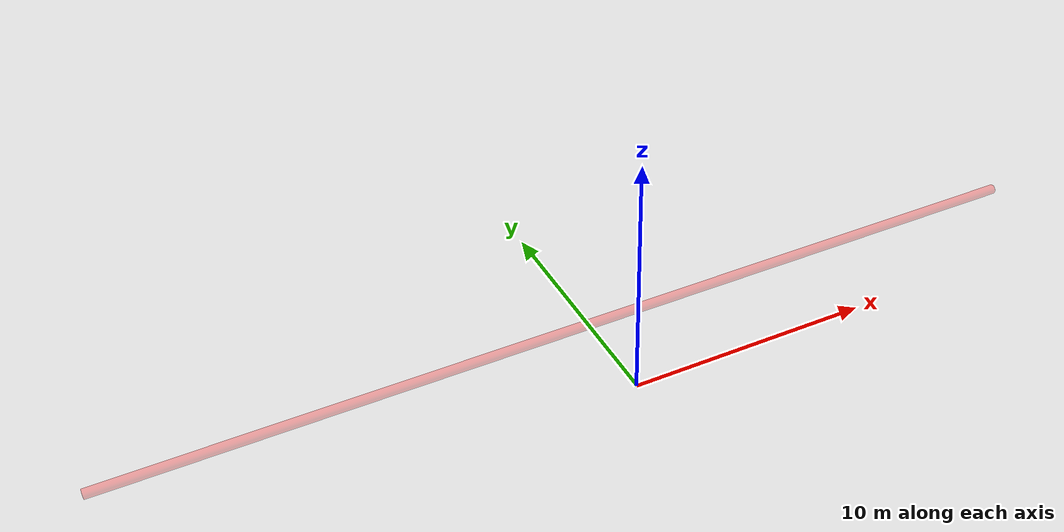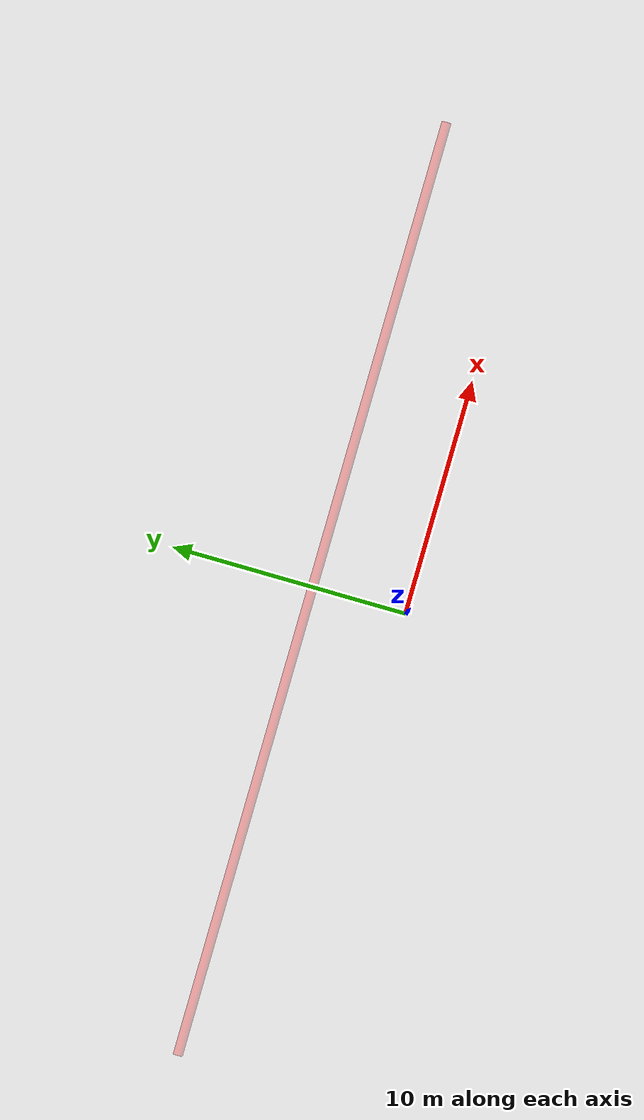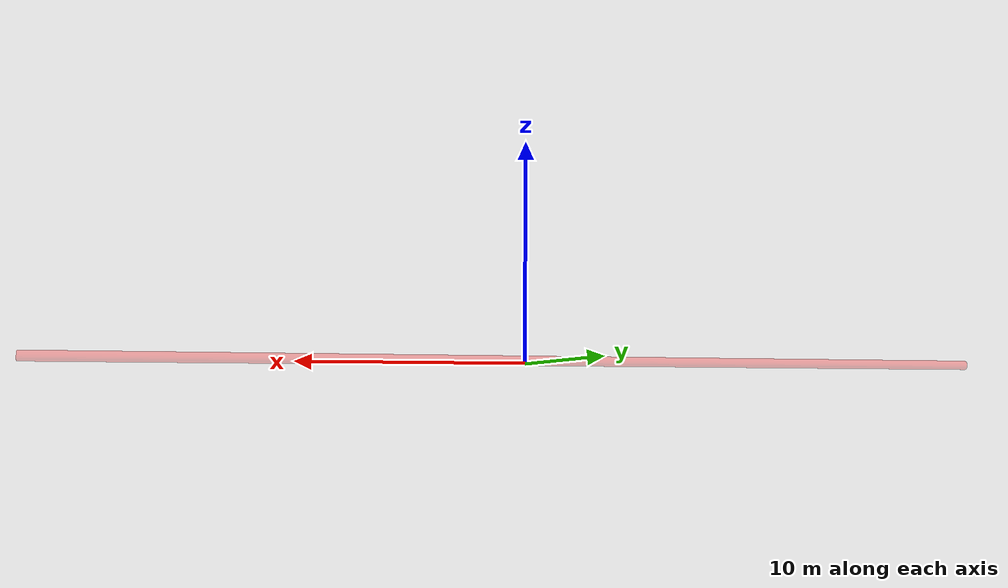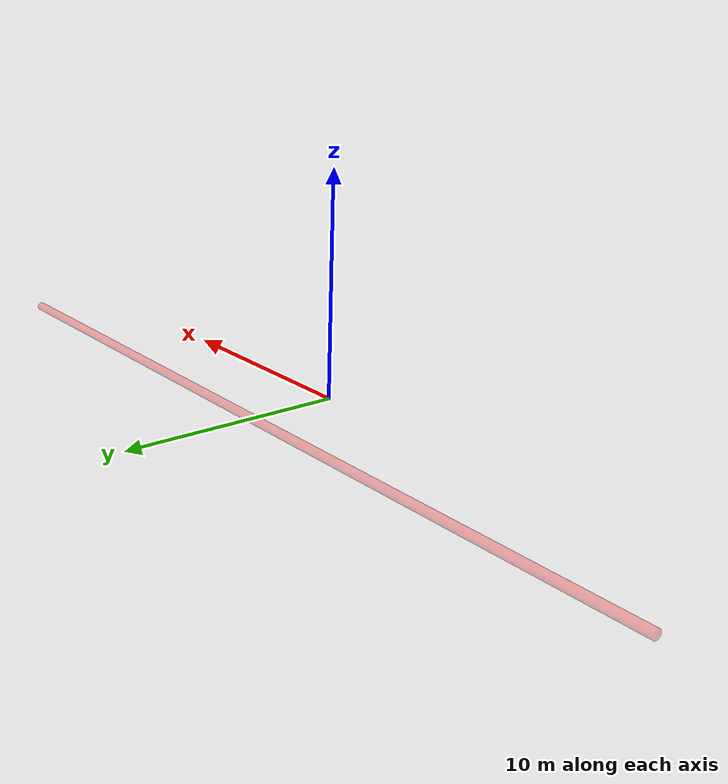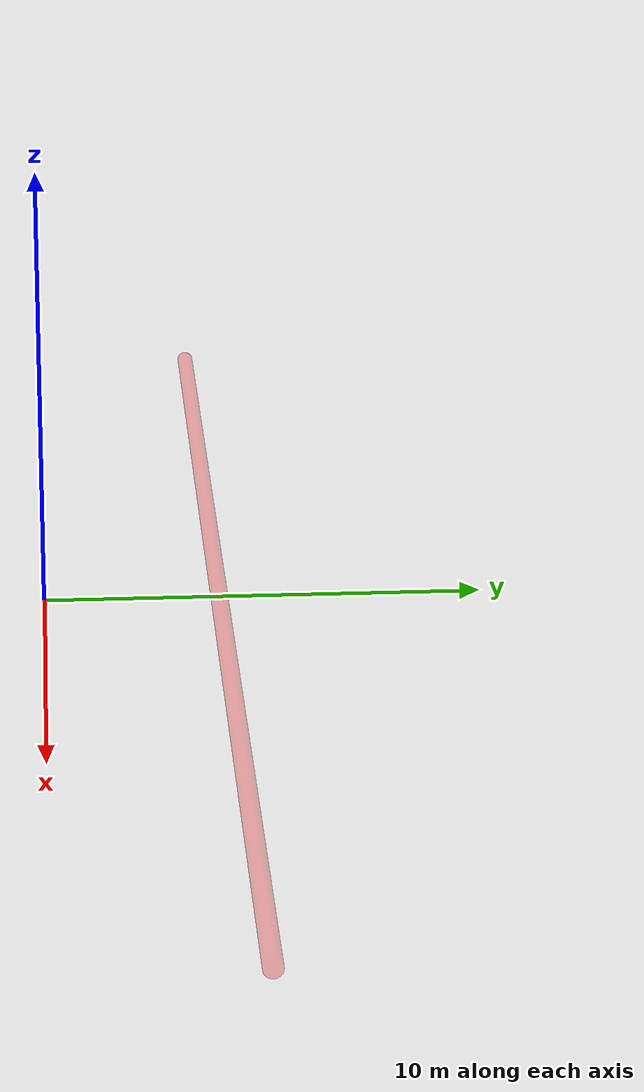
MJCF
<mujoco model="skatepark">
  <worldbody>
    <body name="skatepark" pos="0 0 0">
      <geom name="ollie-obstacle" pos="0 4 0" type="cylinder" size="0.2 20.0" rgba="1 0 0 0.3" quat="1 0 1 0"/>
    </body>
  </worldbody>
</mujoco>
